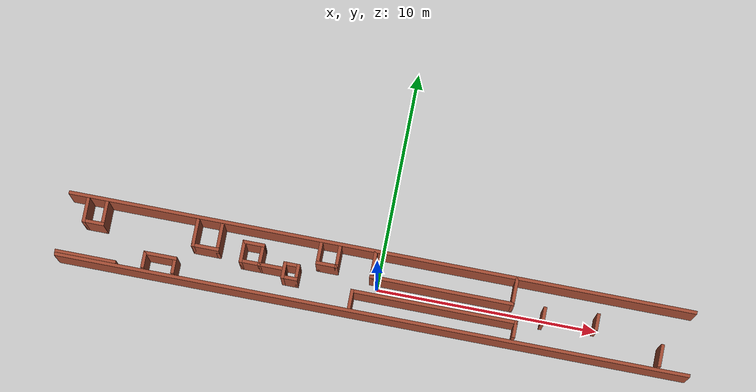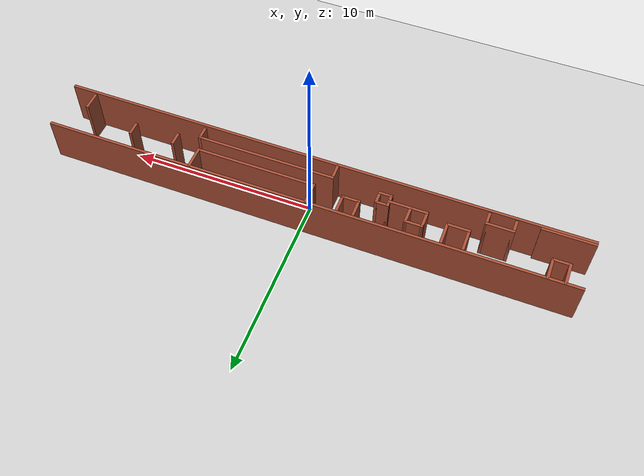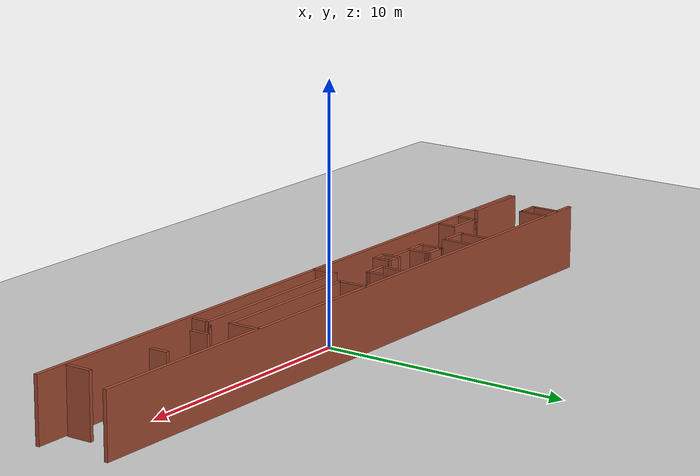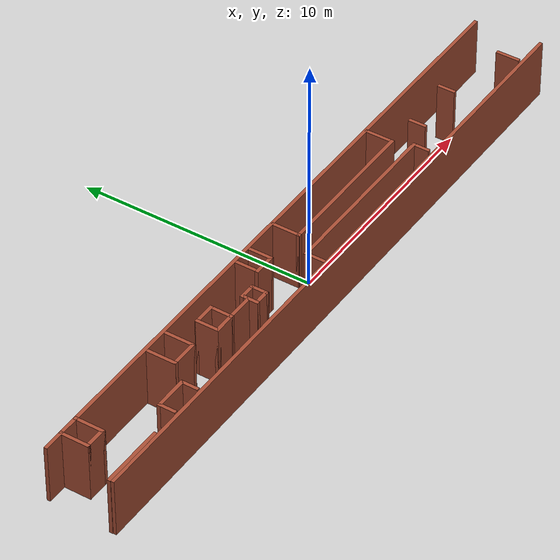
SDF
<sdf version="1.7">
 <world name="default">
  <physics type="ode">
   <max_step_size>0.001</max_step_size>
   <real_time_update_rate>1000</real_time_update_rate>
   <real_time_factor>1</real_time_factor>
   <type>world</type>
   <iters>500</iters>
  </physics>
  <light name="sun" type="directional">
   <pose>0 0 10 0 -0 0</pose>
   <diffuse>0.8 0.8 0.8 1</diffuse>
   <specular>0.2 0.2 0.2 1</specular>
   <attenuation>
    <range>1000</range>
    <constant>0.9</constant>
    <linear>0.01</linear>
    <quadratic>0.001</quadratic>
   </attenuation>
   <direction>-0.5 0.1 -0.9</direction>
   <spot><inner_angle>0</inner_angle><outer_angle>0</outer_angle><falloff>0</falloff></spot>
  </light>
  <model name="ground_plane">
   <static>1</static>
   <link name="link">
    <collision name="collision">
     <geometry><plane><normal>0 0 1</normal><size>100 100</size></plane></geometry>
     <surface><friction><ode><mu>100</mu><mu2>50</mu2></ode></friction></surface>
    </collision>
    <visual name="visual">
     <cast_shadows>0</cast_shadows>
     <geometry><plane><normal>0 0 1</normal><size>100 100</size></plane></geometry>
     <material>
      <script><uri>file://media/materials/scripts/gazebo.material</uri><name>Gazebo/Grey</name></script>
     </material>
    </visual>
   </link>
  </model>
  <gravity>0 0 -9.8</gravity>
  <magnetic_field>6e-06 2.3e-05 -4.2e-05</magnetic_field>
  <atmosphere type="adiabatic"/>
  <scene><ambient>0.4 0.4 0.4 1</ambient><background>0.7 0.7 0.7 1</background><shadows>1</shadows></scene>
  <spherical_coordinates>
   <surface_model>EARTH_WGS84</surface_model>
   <latitude_deg>0</latitude_deg>
   <longitude_deg>0</longitude_deg>
   <elevation>0</elevation>
   <heading_deg>0</heading_deg>
  </spherical_coordinates>
  <model name="corridor">
   <link name="Wall_11">
    <collision name="Wall_11_Collision">
     <geometry><box><size>1.25 0.15 2.5</size></box></geometry>
     <pose>0 0 1.25 0 -0 0</pose>
    </collision>
    <visual name="Wall_11_Visual">
     <pose>0 0 1.25 0 -0 0</pose>
     <geometry><box><size>1.25 0.15 2.5</size></box></geometry>
     <material>
      <script><uri>file://media/materials/scripts/gazebo.material</uri><name>Gazebo/Bricks</name></script>
      <ambient>1 1 1 1</ambient>
     </material>
     <meta><layer>0</layer></meta>
    </visual>
    <pose>-13.2792 0.843761 0 0 -0 -1.5708</pose>
   </link>
   <link name="Wall_12">
    <collision name="Wall_12_Collision">
     <geometry><box><size>1 0.15 2.5</size></box></geometry>
     <pose>0 0 1.25 0 -0 0</pose>
    </collision>
    <visual name="Wall_12_Visual">
     <pose>0 0 1.25 0 -0 0</pose>
     <geometry><box><size>1 0.15 2.5</size></box></geometry>
     <material>
      <script><uri>file://media/materials/scripts/gazebo.material</uri><name>Gazebo/Bricks</name></script>
      <ambient>1 1 1 1</ambient>
     </material>
     <meta><layer>0</layer></meta>
    </visual>
    <pose>-12.8542 0.293761 0 0 -0 0</pose>
   </link>
   <link name="Wall_13">
    <collision name="Wall_13_Collision">
     <geometry><box><size>1.25 0.15 2.5</size></box></geometry>
     <pose>0 0 1.25 0 -0 0</pose>
    </collision>
    <visual name="Wall_13_Visual">
     <pose>0 0 1.25 0 -0 0</pose>
     <geometry><box><size>1.25 0.15 2.5</size></box></geometry>
     <material>
      <script><uri>file://media/materials/scripts/gazebo.material</uri><name>Gazebo/Bricks</name></script>
      <ambient>1 1 1 1</ambient>
     </material>
     <meta><layer>0</layer></meta>
    </visual>
    <pose>-12.4292 0.843761 0 0 -0 1.5708</pose>
   </link>
   <link name="Wall_16">
    <collision name="Wall_16_Collision">
     <geometry><box><size>0.75 0.15 2.5</size></box></geometry>
     <pose>0 0 1.25 0 -0 0</pose>
    </collision>
    <visual name="Wall_16_Visual">
     <pose>0 0 1.25 0 -0 0</pose>
     <geometry><box><size>0.75 0.15 2.5</size></box></geometry>
     <material>
      <script><uri>file://media/materials/scripts/gazebo.material</uri><name>Gazebo/Bricks</name></script>
      <ambient>1 1 1 1</ambient>
     </material>
     <meta><layer>0</layer></meta>
    </visual>
    <pose>-10.3185 -0.901303 0 0 -0 1.5708</pose>
   </link>
   <link name="Wall_17">
    <collision name="Wall_17_Collision">
     <geometry><box><size>1.5 0.15 2.5</size></box></geometry>
     <pose>0 0 1.25 0 -0 0</pose>
    </collision>
    <visual name="Wall_17_Visual">
     <pose>0 0 1.25 0 -0 0</pose>
     <geometry><box><size>1.5 0.15 2.5</size></box></geometry>
     <material>
      <script><uri>file://media/materials/scripts/gazebo.material</uri><name>Gazebo/Bricks</name></script>
      <ambient>1 1 1 1</ambient>
     </material>
     <meta><layer>0</layer></meta>
    </visual>
    <pose>-9.64353 -0.601304 0 0 -0 0</pose>
   </link>
   <link name="Wall_18">
    <collision name="Wall_18_Collision">
     <geometry><box><size>0.75 0.15 2.5</size></box></geometry>
     <pose>0 0 1.25 0 -0 0</pose>
    </collision>
    <visual name="Wall_18_Visual">
     <pose>0 0 1.25 0 -0 0</pose>
     <geometry><box><size>0.75 0.15 2.5</size></box></geometry>
     <material>
      <script><uri>file://media/materials/scripts/gazebo.material</uri><name>Gazebo/Bricks</name></script>
      <ambient>1 1 1 1</ambient>
     </material>
     <meta><layer>0</layer></meta>
    </visual>
    <pose>-8.96853 -0.901303 0 0 -0 -1.5708</pose>
   </link>
   <link name="Wall_2">
    <collision name="Wall_2_Collision">
     <geometry><box><size>2.75 0.15 2.5</size></box></geometry>
     <pose>0 0 1.25 0 -0 0</pose>
    </collision>
    <visual name="Wall_2_Visual">
     <pose>0 0 1.25 0 -0 0</pose>
     <geometry><box><size>2.75 0.15 2.5</size></box></geometry>
     <material>
      <script><uri>file://media/materials/scripts/gazebo.material</uri><name>Gazebo/Bricks</name></script>
      <ambient>1 1 1 1</ambient>
     </material>
     <meta><layer>0</layer></meta>
    </visual>
    <pose>-12.881 -1.26885 0 0 -0 3.14159</pose>
   </link>
   <link name="Wall_20">
    <collision name="Wall_20_Collision">
     <geometry><box><size>1.25 0.15 2.5</size></box></geometry>
     <pose>0 0 1.25 0 -0 0</pose>
    </collision>
    <visual name="Wall_20_Visual">
     <pose>0 0 1.25 0 -0 0</pose>
     <geometry><box><size>1.25 0.15 2.5</size></box></geometry>
     <material>
      <script><uri>file://media/materials/scripts/gazebo.material</uri><name>Gazebo/Bricks</name></script>
      <ambient>1 1 1 1</ambient>
     </material>
     <meta><layer>0</layer></meta>
    </visual>
    <pose>-8.31815 0.695856 0 0 -0 -1.5708</pose>
   </link>
   <link name="Wall_24">
    <collision name="Wall_24_Collision">
     <geometry><box><size>1.25 0.15 2.5</size></box></geometry>
     <pose>0 0 1.25 0 -0 0</pose>
    </collision>
    <visual name="Wall_24_Visual">
     <pose>0 0 1.25 0 -0 0</pose>
     <geometry><box><size>1.25 0.15 2.5</size></box></geometry>
     <material>
      <script><uri>file://media/materials/scripts/gazebo.material</uri><name>Gazebo/Bricks</name></script>
      <ambient>1 1 1 1</ambient>
     </material>
     <meta><layer>0</layer></meta>
    </visual>
    <pose>-7.76815 0.145856 0 0 -0 0</pose>
   </link>
   <link name="Wall_25">
    <collision name="Wall_25_Collision">
     <geometry><box><size>1.25 0.15 2.5</size></box></geometry>
     <pose>0 0 1.25 0 -0 0</pose>
    </collision>
    <visual name="Wall_25_Visual">
     <pose>0 0 1.25 0 -0 0</pose>
     <geometry><box><size>1.25 0.15 2.5</size></box></geometry>
     <material>
      <script><uri>file://media/materials/scripts/gazebo.material</uri><name>Gazebo/Bricks</name></script>
      <ambient>1 1 1 1</ambient>
     </material>
     <meta><layer>0</layer></meta>
    </visual>
    <pose>-7.21815 0.695856 0 0 -0 1.5708</pose>
   </link>
   <link name="Wall_27">
    <collision name="Wall_27_Collision">
     <geometry><box><size>1 0.15 2.5</size></box></geometry>
     <pose>0 0 1.25 0 -0 0</pose>
    </collision>
    <visual name="Wall_27_Visual">
     <pose>0 0 1.25 0 -0 0</pose>
     <geometry><box><size>1 0.15 2.5</size></box></geometry>
     <material>
      <script><uri>file://media/materials/scripts/gazebo.material</uri><name>Gazebo/Bricks</name></script>
      <ambient>1 1 1 1</ambient>
     </material>
     <meta><layer>0</layer></meta>
    </visual>
    <pose>-6.11015 0.283356 0 0 -0 -1.5708</pose>
   </link>
   <link name="Wall_28">
    <collision name="Wall_28_Collision">
     <geometry><box><size>0.9885 0.15 2.5</size></box></geometry>
     <pose>0 0 1.25 0 -0 0</pose>
    </collision>
    <visual name="Wall_28_Visual">
     <pose>0 0 1.25 0 -0 0</pose>
     <geometry><box><size>0.9885 0.15 2.5</size></box></geometry>
     <material>
      <script><uri>file://media/materials/scripts/gazebo.material</uri><name>Gazebo/Bricks</name></script>
      <ambient>1 1 1 1</ambient>
     </material>
     <meta><layer>0</layer></meta>
    </visual>
    <pose>-5.6909 -0.141644 0 0 -0 0</pose>
   </link>
   <link name="Wall_29">
    <collision name="Wall_29_Collision">
     <geometry><box><size>1.00031 0.15 2.5</size></box></geometry>
     <pose>0 0 1.25 0 -0 0</pose>
    </collision>
    <visual name="Wall_29_Visual">
     <pose>0 0 1.25 0 -0 0</pose>
     <geometry><box><size>1.00031 0.15 2.5</size></box></geometry>
     <material>
      <script><uri>file://media/materials/scripts/gazebo.material</uri><name>Gazebo/Bricks</name></script>
      <ambient>1 1 1 1</ambient>
     </material>
     <meta><layer>0</layer></meta>
    </visual>
    <pose>-5.2659 0.283356 0 0 -0 1.55727</pose>
   </link>
   <link name="Wall_30">
    <collision name="Wall_30_Collision">
     <geometry><box><size>1 0.15 2.5</size></box></geometry>
     <pose>0 0 1.25 0 -0 0</pose>
    </collision>
    <visual name="Wall_30_Visual">
     <pose>0 0 1.25 0 -0 0</pose>
     <geometry><box><size>1 0.15 2.5</size></box></geometry>
     <material>
      <script><uri>file://media/materials/scripts/gazebo.material</uri><name>Gazebo/Bricks</name></script>
      <ambient>1 1 1 1</ambient>
     </material>
     <meta><layer>0</layer></meta>
    </visual>
    <pose>-5.68515 0.708356 0 0 -0 3.14159</pose>
   </link>
   <link name="Wall_33">
    <collision name="Wall_33_Collision">
     <geometry><box><size>1.25 0.15 2.5</size></box></geometry>
     <pose>0 0 1.25 0 -0 0</pose>
    </collision>
    <visual name="Wall_33_Visual">
     <pose>0 0 1.25 0 -0 0</pose>
     <geometry><box><size>1.25 0.15 2.5</size></box></geometry>
     <material>
      <script><uri>file://media/materials/scripts/gazebo.material</uri><name>Gazebo/Bricks</name></script>
      <ambient>1 1 1 1</ambient>
     </material>
     <meta><layer>0</layer></meta>
    </visual>
    <pose>-4.71015 -0.141644 0 0 -0 0</pose>
   </link>
   <link name="Wall_36">
    <collision name="Wall_36_Collision">
     <geometry><box><size>0.75 0.15 2.5</size></box></geometry>
     <pose>0 0 1.25 0 -0 0</pose>
    </collision>
    <visual name="Wall_36_Visual">
     <pose>0 0 1.25 0 -0 0</pose>
     <geometry><box><size>0.75 0.15 2.5</size></box></geometry>
     <material>
      <script><uri>file://media/materials/scripts/gazebo.material</uri><name>Gazebo/Bricks</name></script>
      <ambient>1 1 1 1</ambient>
     </material>
     <meta><layer>0</layer></meta>
    </visual>
    <pose>-3.86015 -0.491644 0 0 -0 0</pose>
   </link>
   <link name="Wall_37">
    <collision name="Wall_37_Collision">
     <geometry><box><size>0.75 0.15 2.5</size></box></geometry>
     <pose>0 0 1.25 0 -0 0</pose>
    </collision>
    <visual name="Wall_37_Visual">
     <pose>0 0 1.25 0 -0 0</pose>
     <geometry><box><size>0.75 0.15 2.5</size></box></geometry>
     <material>
      <script><uri>file://media/materials/scripts/gazebo.material</uri><name>Gazebo/Bricks</name></script>
      <ambient>1 1 1 1</ambient>
     </material>
     <meta><layer>0</layer></meta>
    </visual>
    <pose>-3.56015 -0.191644 0 0 -0 1.5708</pose>
   </link>
   <link name="Wall_40">
    <collision name="Wall_40_Collision">
     <geometry><box><size>0.75 0.15 2.5</size></box></geometry>
     <pose>0 0 1.25 0 -0 0</pose>
    </collision>
    <visual name="Wall_40_Visual">
     <pose>0 0 1.25 0 -0 0</pose>
     <geometry><box><size>0.75 0.15 2.5</size></box></geometry>
     <material>
      <script><uri>file://media/materials/scripts/gazebo.material</uri><name>Gazebo/Bricks</name></script>
      <ambient>1 1 1 1</ambient>
     </material>
     <meta><layer>0</layer></meta>
    </visual>
    <pose>-3.86015 0.108356 0 0 -0 3.14159</pose>
   </link>
   <link name="Wall_41">
    <collision name="Wall_41_Collision">
     <geometry><box><size>0.75 0.15 2.5</size></box></geometry>
     <pose>0 0 1.25 0 -0 0</pose>
    </collision>
    <visual name="Wall_41_Visual">
     <pose>0 0 1.25 0 -0 0</pose>
     <geometry><box><size>0.75 0.15 2.5</size></box></geometry>
     <material>
      <script><uri>file://media/materials/scripts/gazebo.material</uri><name>Gazebo/Bricks</name></script>
      <ambient>1 1 1 1</ambient>
     </material>
     <meta><layer>0</layer></meta>
    </visual>
    <pose>-4.16015 -0.191644 0 0 -0 -1.5708</pose>
   </link>
   <link name="Wall_43">
    <collision name="Wall_43_Collision">
     <geometry><box><size>1 0.15 2.5</size></box></geometry>
     <pose>0 0 1.25 0 -0 0</pose>
    </collision>
    <visual name="Wall_43_Visual">
     <pose>0 0 1.25 0 -0 0</pose>
     <geometry><box><size>1 0.15 2.5</size></box></geometry>
     <material>
      <script><uri>file://media/materials/scripts/gazebo.material</uri><name>Gazebo/Bricks</name></script>
      <ambient>1 1 1 1</ambient>
     </material>
     <meta><layer>0</layer></meta>
    </visual>
    <pose>-2.76472 0.832332 0 0 -0 -1.5708</pose>
   </link>
   <link name="Wall_44">
    <collision name="Wall_44_Collision">
     <geometry><box><size>1 0.15 2.5</size></box></geometry>
     <pose>0 0 1.25 0 -0 0</pose>
    </collision>
    <visual name="Wall_44_Visual">
     <pose>0 0 1.25 0 -0 0</pose>
     <geometry><box><size>1 0.15 2.5</size></box></geometry>
     <material>
      <script><uri>file://media/materials/scripts/gazebo.material</uri><name>Gazebo/Bricks</name></script>
      <ambient>1 1 1 1</ambient>
     </material>
     <meta><layer>0</layer></meta>
    </visual>
    <pose>-2.33973 0.407332 0 0 -0 0</pose>
   </link>
   <link name="Wall_45">
    <collision name="Wall_45_Collision">
     <geometry><box><size>1 0.15 2.5</size></box></geometry>
     <pose>0 0 1.25 0 -0 0</pose>
    </collision>
    <visual name="Wall_45_Visual">
     <pose>0 0 1.25 0 -0 0</pose>
     <geometry><box><size>1 0.15 2.5</size></box></geometry>
     <material>
      <script><uri>file://media/materials/scripts/gazebo.material</uri><name>Gazebo/Bricks</name></script>
      <ambient>1 1 1 1</ambient>
     </material>
     <meta><layer>0</layer></meta>
    </visual>
    <pose>-1.91473 0.832332 0 0 -0 1.5708</pose>
   </link>
   <link name="Wall_47">
    <collision name="Wall_47_Collision">
     <geometry><box><size>1.25 0.15 2.5</size></box></geometry>
     <pose>0 0 1.25 0 -0 0</pose>
    </collision>
    <visual name="Wall_47_Visual">
     <pose>0 0 1.25 0 -0 0</pose>
     <geometry><box><size>1.25 0.15 2.5</size></box></geometry>
     <material>
      <script><uri>file://media/materials/scripts/gazebo.material</uri><name>Gazebo/Bricks</name></script>
      <ambient>1 1 1 1</ambient>
     </material>
     <meta><layer>0</layer></meta>
    </visual>
    <pose>-0.316116 0.796695 0 0 -0 -1.5708</pose>
   </link>
   <link name="Wall_48">
    <collision name="Wall_48_Collision">
     <geometry><box><size>6.5 0.15 2.5</size></box></geometry>
     <pose>0 0 1.25 0 -0 0</pose>
    </collision>
    <visual name="Wall_48_Visual">
     <pose>0 0 1.25 0 -0 0</pose>
     <geometry><box><size>6.5 0.15 2.5</size></box></geometry>
     <material>
      <script><uri>file://media/materials/scripts/gazebo.material</uri><name>Gazebo/Bricks</name></script>
      <ambient>1 1 1 1</ambient>
     </material>
     <meta><layer>0</layer></meta>
    </visual>
    <pose>2.85888 0.246695 0 0 -0 0</pose>
   </link>
   <link name="Wall_49">
    <collision name="Wall_49_Collision">
     <geometry><box><size>1.25 0.15 2.5</size></box></geometry>
     <pose>0 0 1.25 0 -0 0</pose>
    </collision>
    <visual name="Wall_49_Visual">
     <pose>0 0 1.25 0 -0 0</pose>
     <geometry><box><size>1.25 0.15 2.5</size></box></geometry>
     <material>
      <script><uri>file://media/materials/scripts/gazebo.material</uri><name>Gazebo/Bricks</name></script>
      <ambient>1 1 1 1</ambient>
     </material>
     <meta><layer>0</layer></meta>
    </visual>
    <pose>6.03388 0.796695 0 0 -0 1.5708</pose>
   </link>
   <link name="Wall_51">
    <collision name="Wall_51_Collision">
     <geometry><box><size>1 0.15 2.5</size></box></geometry>
     <pose>0 0 1.25 0 -0 0</pose>
    </collision>
    <visual name="Wall_51_Visual">
     <pose>0 0 1.25 0 -0 0</pose>
     <geometry><box><size>1 0.15 2.5</size></box></geometry>
     <material>
      <script><uri>file://media/materials/scripts/gazebo.material</uri><name>Gazebo/Bricks</name></script>
      <ambient>1 1 1 1</ambient>
     </material>
     <meta><layer>0</layer></meta>
    </visual>
    <pose>-1.02063 -0.954858 0 0 -0 1.5708</pose>
   </link>
   <link name="Wall_52">
    <collision name="Wall_52_Collision">
     <geometry><box><size>7.5 0.15 2.5</size></box></geometry>
     <pose>0 0 1.25 0 -0 0</pose>
    </collision>
    <visual name="Wall_52_Visual">
     <pose>0 0 1.25 0 -0 0</pose>
     <geometry><box><size>7.5 0.15 2.5</size></box></geometry>
     <material>
      <script><uri>file://media/materials/scripts/gazebo.material</uri><name>Gazebo/Bricks</name></script>
      <ambient>1 1 1 1</ambient>
     </material>
     <meta><layer>0</layer></meta>
    </visual>
    <pose>2.65437 -0.529858 0 0 -0 0</pose>
   </link>
   <link name="Wall_53">
    <collision name="Wall_53_Collision">
     <geometry><box><size>0.75 0.15 2.5</size></box></geometry>
     <pose>0 0 1.25 0 -0 0</pose>
    </collision>
    <visual name="Wall_53_Visual">
     <pose>0 0 1.25 0 -0 0</pose>
     <geometry><box><size>0.75 0.15 2.5</size></box></geometry>
     <material>
      <script><uri>file://media/materials/scripts/gazebo.material</uri><name>Gazebo/Bricks</name></script>
      <ambient>1 1 1 1</ambient>
     </material>
     <meta><layer>0</layer></meta>
    </visual>
    <pose>6.32937 -0.829858 0 0 -0 -1.5708</pose>
   </link>
   <link name="Wall_55">
    <collision name="Wall_55_Collision">
     <geometry><box><size>0.75 0.15 2.5</size></box></geometry>
     <pose>0 0 1.25 0 -0 0</pose>
    </collision>
    <visual name="Wall_55_Visual">
     <pose>0 0 1.25 0 -0 0</pose>
     <geometry><box><size>0.75 0.15 2.5</size></box></geometry>
     <material>
      <script><uri>file://media/materials/scripts/gazebo.material</uri><name>Gazebo/Bricks</name></script>
      <ambient>1 1 1 1</ambient>
     </material>
     <meta><layer>0</layer></meta>
    </visual>
    <pose>7.47954 0.016678 0 0 -0 -1.5708</pose>
   </link>
   <link name="Wall_57">
    <collision name="Wall_57_Collision">
     <geometry><box><size>0.75 0.15 2.5</size></box></geometry>
     <pose>0 0 1.25 0 -0 0</pose>
    </collision>
    <visual name="Wall_57_Visual">
     <pose>0 0 1.25 0 -0 0</pose>
     <geometry><box><size>0.75 0.15 2.5</size></box></geometry>
     <material>
      <script><uri>file://media/materials/scripts/gazebo.material</uri><name>Gazebo/Bricks</name></script>
      <ambient>1 1 1 1</ambient>
     </material>
     <meta><layer>0</layer></meta>
    </visual>
    <pose>9.8407 0.174088 0 0 -0 -1.5708</pose>
   </link>
   <link name="Wall_59">
    <collision name="Wall_59_Collision">
     <geometry><box><size>1 0.15 2.5</size></box></geometry>
     <pose>0 0 1.25 0 -0 0</pose>
    </collision>
    <visual name="Wall_59_Visual">
     <pose>0 0 1.25 0 -0 0</pose>
     <geometry><box><size>1 0.15 2.5</size></box></geometry>
     <material>
      <script><uri>file://media/materials/scripts/gazebo.material</uri><name>Gazebo/Bricks</name></script>
      <ambient>1 1 1 1</ambient>
     </material>
     <meta><layer>0</layer></meta>
    </visual>
    <pose>12.849 -0.755454 0 0 -0 -1.5708</pose>
   </link>
   <link name="Wall_7">
    <collision name="Wall_7_Collision">
     <geometry><box><size>28.5 0.15 2.5</size></box></geometry>
     <pose>0 0 1.25 0 -0 0</pose>
    </collision>
    <visual name="Wall_7_Visual">
     <pose>0 0 1.25 0 -0 0</pose>
     <geometry><box><size>28.5 0.15 2.5</size></box></geometry>
     <material>
      <script><uri>file://media/materials/scripts/gazebo.material</uri><name>Gazebo/Bricks</name></script>
      <ambient>1 1 1 1</ambient>
     </material>
     <meta><layer>0</layer></meta>
    </visual>
    <pose>0.006021 -1.40504 0 0 -0 0</pose>
   </link>
   <link name="Wall_9">
    <collision name="Wall_9_Collision">
     <geometry><box><size>28.25 0.15 2.5</size></box></geometry>
     <pose>0 0 1.25 0 -0 0</pose>
    </collision>
    <visual name="Wall_9_Visual">
     <pose>0 0 1.25 0 -0 0</pose>
     <geometry><box><size>28.25 0.15 2.5</size></box></geometry>
     <material>
      <script><uri>file://media/materials/scripts/gazebo.material</uri><name>Gazebo/Bricks</name></script>
      <ambient>1 1 1 1</ambient>
     </material>
     <meta><layer>0</layer></meta>
    </visual>
    <pose>-0.047601 1.40504 0 0 -0 0</pose>
   </link>
   <static>1</static>
  </model>
 </world>
</sdf>
